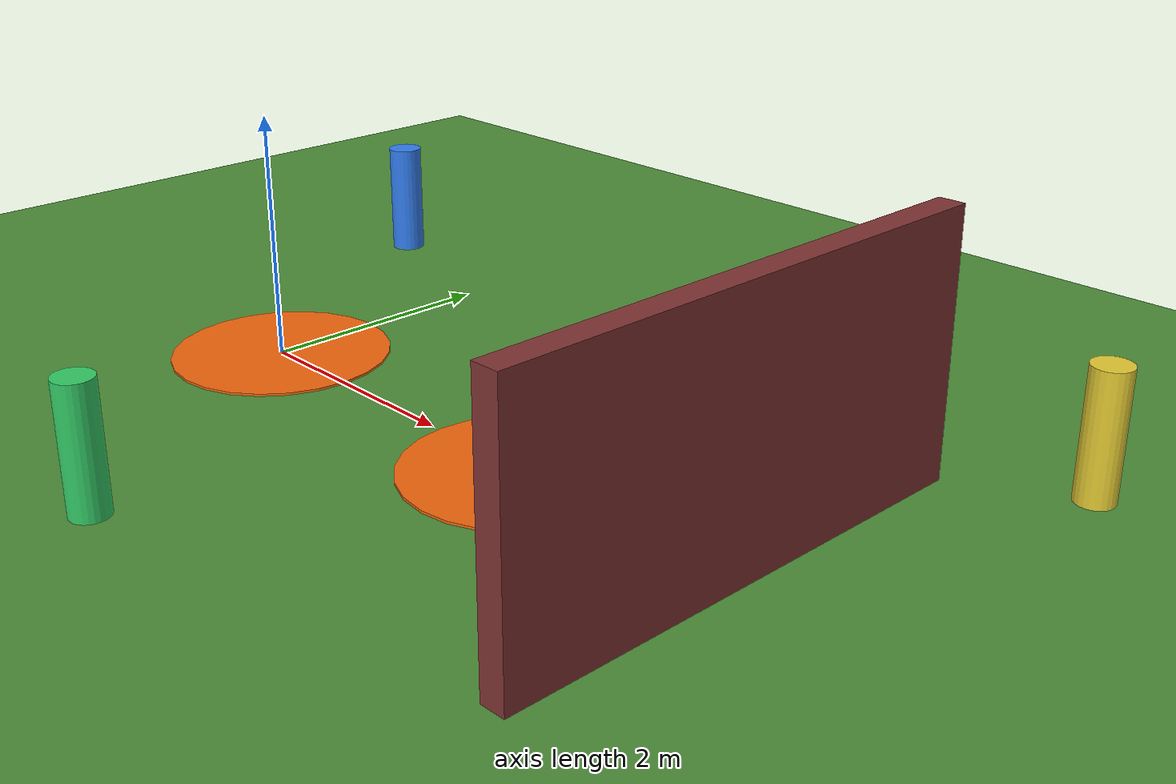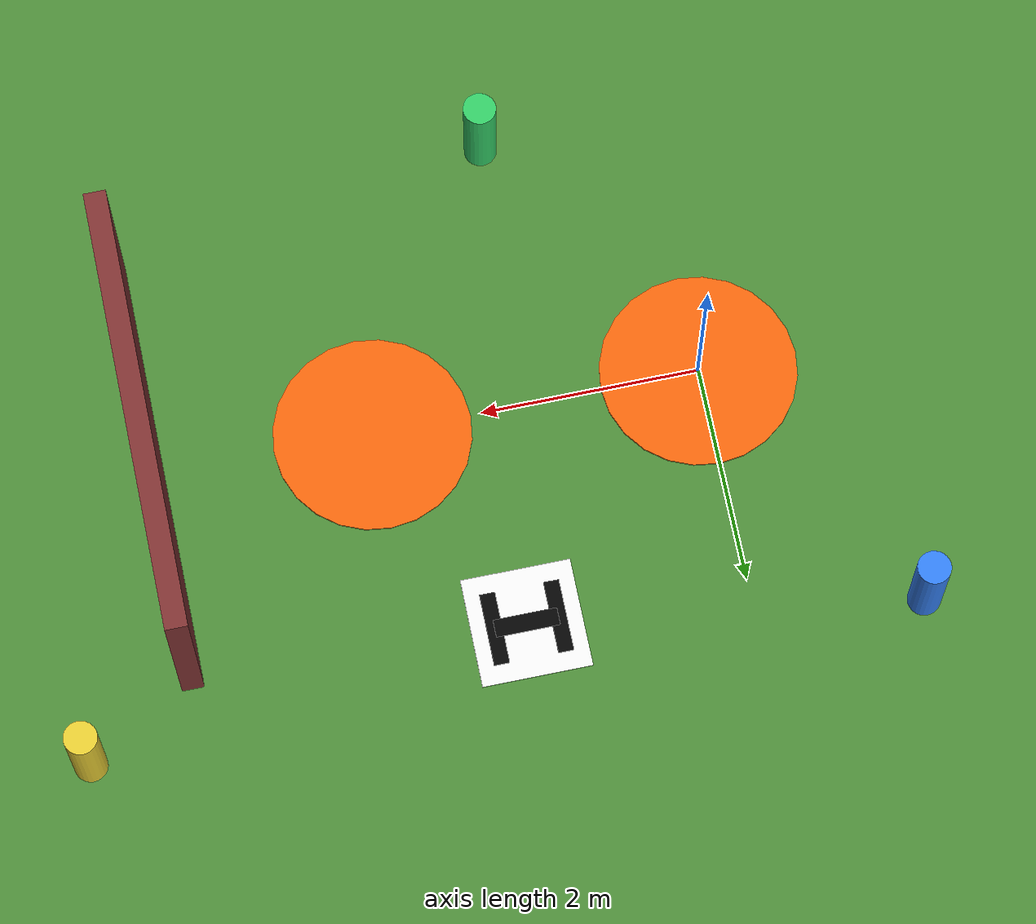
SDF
<?xml version="1.0" ?>
<!-- Мир-лаборатория UAV.
     Оптимизирован под GTX 1050: тени отключены, физика настроена явно. -->
<sdf version="1.9">
  <world name="lab">

    <!-- ============ ФИЗИКА (настройка под слабое железо) ============ -->
    <!-- type="ignored" отключал физику -> IMU не публиковался -> EKF2 "missing data".
         Используем ODE (как в default.sdf PX4), чтобы дрон и сенсоры работали. -->
    <physics name="default" type="ode">
      <max_step_size>0.004</max_step_size>
      <real_time_factor>1.0</real_time_factor>
      <real_time_update_rate>250</real_time_update_rate>
    </physics>
    <plugin name="gz::sim::systems::Physics" filename="gz-sim-physics-system"/>
    <plugin name="gz::sim::systems::UserCommands" filename="gz-sim-user-commands-system"/>
    <plugin name="gz::sim::systems::SceneBroadcaster" filename="gz-sim-scene-broadcaster-system"/>
    <plugin name="gz::sim::systems::Contact" filename="gz-sim-contact-system"/>
    <plugin name="gz::sim::systems::Sensors" filename="gz-sim-sensors-system"/>
    <plugin name="gz::sim::systems::Imu" filename="gz-sim-imu-system"/>
    <plugin name="gz::sim::systems::AirPressure" filename="gz-sim-air-pressure-system"/>
    <plugin name="gz::sim::systems::NavSat" filename="gz-sim-navsat-system"/>
    <plugin name="gz::sim::systems::Magnetometer" filename="gz-sim-magnetometer-system"/>

    <!-- Магнитное поле Земли (как в default.sdf PX4) — нужно для компаса
         sensor_mag_sim, иначе Preflight "Compass Sensor 0 missing". -->
    <magnetic_field>6e-06 2.3e-05 -4.2e-05</magnetic_field>

    <!-- ============ СЦЕНА (тёмный фон, тени выключены) ============ -->
    <scene>
      <ambient>0.55 0.55 0.6</ambient>
      <background>0.53 0.81 0.92</background>
      <sky>
        <time>10.0</time>
      </sky>
      <shadows>false</shadows>
      <grid>false</grid>
    </scene>

    <light type="directional" name="sun">
      <cast_shadows>false</cast_shadows>
      <pose>0 0 10 0 0 0</pose>
      <direction>0.3 0.4 -1</direction>
      <diffuse>0.9 0.9 0.85 1</diffuse>
      <specular>0.2 0.2 0.2 1</specular>
    </light>

    <!-- ============ ЗЕМЛЯ: зелёная «трава» ============ -->
    <model name="ground_plane">
      <static>true</static>
      <link name="link">
        <collision name="collision">
          <geometry>
            <plane>
              <normal>0 0 1</normal>
              <size>40 40</size>
            </plane>
          </geometry>
        </collision>
        <visual name="visual">
          <geometry>
            <plane>
              <normal>0 0 1</normal>
              <size>40 40</size>
            </plane>
          </geometry>
          <material>
            <ambient>0.2 0.45 0.18 1</ambient>
            <diffuse>0.3 0.55 0.22 1</diffuse>
            <specular>0.05 0.05 0.05 1</specular>
          </material>
        </visual>
      </link>
    </model>

    <!-- ============ ВЗЛЁТНО-ПОСАДОЧНЫЕ ПЛОЩАДКИ ============ -->
    <!-- Стартовая площадка (точка взлёта) -->
    <model name="pad_start">
      <static>true</static>
      <pose>0 0 0.01 0 0 0</pose>
      <link name="link">
        <visual name="visual">
          <geometry>
            <cylinder>
              <radius>0.9</radius>
              <length>0.02</length>
            </cylinder>
          </geometry>
          <material>
            <ambient>0.9 0.35 0.05 1</ambient>
            <diffuse>0.95 0.4 0.05 1</diffuse>
            <specular>0.2 0.2 0.2 1</specular>
          </material>
        </visual>
      </link>
    </model>

    <!-- Площадка у цели Nav2 (x=3) -->
    <model name="pad_goal">
      <static>true</static>
      <pose>3 0 0.01 0 0 0</pose>
      <link name="link">
        <visual name="visual">
          <geometry>
            <cylinder>
              <radius>0.9</radius>
              <length>0.02</length>
            </cylinder>
          </geometry>
          <material>
            <ambient>0.9 0.35 0.05 1</ambient>
            <diffuse>0.95 0.4 0.05 1</diffuse>
            <specular>0.2 0.2 0.2 1</specular>
          </material>
        </visual>
      </link>
    </model>

    <!-- ============ ЦВЕТНЫЕ ОРИЕНТИРЫ (для восприятия движения) ============ -->
    <model name="landmark_blue">
      <static>true</static>
      <pose>-1.5 2.5 0.5 0 0 0</pose>
      <link name="link">
        <collision name="collision">
          <geometry>
            <cylinder>
              <radius>0.15</radius>
              <length>1</length>
            </cylinder>
          </geometry>
        </collision>
        <visual name="visual">
          <geometry>
            <cylinder>
              <radius>0.15</radius>
              <length>1</length>
            </cylinder>
          </geometry>
          <material>
            <ambient>0.1 0.3 0.8 1</ambient>
            <diffuse>0.2 0.5 0.95 1</diffuse>
          </material>
        </visual>
      </link>
    </model>

    <model name="landmark_yellow">
      <static>true</static>
      <pose>6 2.5 0.5 0 0 0</pose>
      <link name="link">
        <collision name="collision">
          <geometry>
            <cylinder>
              <radius>0.15</radius>
              <length>1</length>
            </cylinder>
          </geometry>
        </collision>
        <visual name="visual">
          <geometry>
            <cylinder>
              <radius>0.15</radius>
              <length>1</length>
            </cylinder>
          </geometry>
          <material>
            <ambient>0.8 0.7 0.1 1</ambient>
            <diffuse>0.9 0.8 0.2 1</diffuse>
          </material>
        </visual>
      </link>
    </model>

    <model name="landmark_green">
      <static>true</static>
      <pose>1.5 -2.5 0.5 0 0 0</pose>
      <link name="link">
        <collision name="collision">
          <geometry>
            <cylinder>
              <radius>0.15</radius>
              <length>1</length>
            </cylinder>
          </geometry>
        </collision>
        <visual name="visual">
          <geometry>
            <cylinder>
              <radius>0.15</radius>
              <length>1</length>
            </cylinder>
          </geometry>
          <material>
            <ambient>0.1 0.7 0.3 1</ambient>
            <diffuse>0.2 0.8 0.4 1</diffuse>
          </material>
        </visual>
      </link>
    </model>

    <!-- ============ СТЕНА-ПРЕПЯТСТВИЕ (тест Nav2) ============ -->
    <model name="wall">
      <static>true</static>
      <pose>5 0 1 0 0 0</pose>
      <link name="link">
        <collision name="collision">
          <geometry>
            <box>
              <size>0.2 4 2</size>
            </box>
          </geometry>
        </collision>
        <visual name="visual">
          <geometry>
            <box>
              <size>0.2 4 2</size>
            </box>
          </geometry>
          <material>
            <ambient>0.5 0.2 0.2 1</ambient>
            <diffuse>0.5 0.2 0.2 1</diffuse>
          </material>
        </visual>
      </link>
    </model>

    <!-- ============ H-МАРКЕР (точная посадка, CV) ============ -->
    <include>
      <uri>model://h_marker</uri>
      <pose>2 2 0 0 0 0</pose>
    </include>

    <!-- ============ СФЕРИЧЕСКИЕ КООРДИНАТЫ (для NavSat / GPS) ============ -->
    <spherical_coordinates>
      <surface_model>EARTH_WGS84</surface_model>
      <world_frame_orientation>ENU</world_frame_orientation>
      <latitude_deg>47.397971057728974</latitude_deg>
      <longitude_deg>8.546163739800146</longitude_deg>
      <elevation>0</elevation>
    </spherical_coordinates>

  </world>
</sdf>

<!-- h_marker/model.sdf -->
<sdf version="1.9">
  <model name="h_marker">
    <static>true</static>
    <link name="link">

      <!-- Белая подложка 1x1 м (центр в начале координат, лежит на земле) -->
      <visual name="board">
        <geometry>
          <box>
            <size>1 1 0.01</size>
          </box>
        </geometry>
        <material>
          <ambient>0.9 0.9 0.9 1</ambient>
          <diffuse>0.95 0.95 0.95 1</diffuse>
        </material>
      </visual>
      <collision name="board_collision">
        <geometry>
          <box>
            <size>1 1 0.01</size>
          </box>
        </geometry>
      </collision>

      <!-- Левая ножка буквы H (тёмная) -->
      <visual name="leg_left">
        <pose>-0.29 0 0.012 0 0 0</pose>
        <geometry>
          <box>
            <size>0.14 0.66 0.012</size>
          </box>
        </geometry>
        <material>
          <ambient>0.02 0.02 0.02 1</ambient>
          <diffuse>0.02 0.02 0.02 1</diffuse>
        </material>
      </visual>

      <!-- Правая ножка буквы H (тёмная) -->
      <visual name="leg_right">
        <pose>0.29 0 0.012 0 0 0</pose>
        <geometry>
          <box>
            <size>0.14 0.66 0.012</size>
          </box>
        </geometry>
        <material>
          <ambient>0.02 0.02 0.02 1</ambient>
          <diffuse>0.02 0.02 0.02 1</diffuse>
        </material>
      </visual>

      <!-- Перекладина буквы H (тёмная) -->
      <visual name="crossbar">
        <pose>0 0 0.012 0 0 0</pose>
        <geometry>
          <box>
            <size>0.58 0.16 0.012</size>
          </box>
        </geometry>
        <material>
          <ambient>0.02 0.02 0.02 1</ambient>
          <diffuse>0.02 0.02 0.02 1</diffuse>
        </material>
      </visual>

    </link>
  </model>
</sdf>
